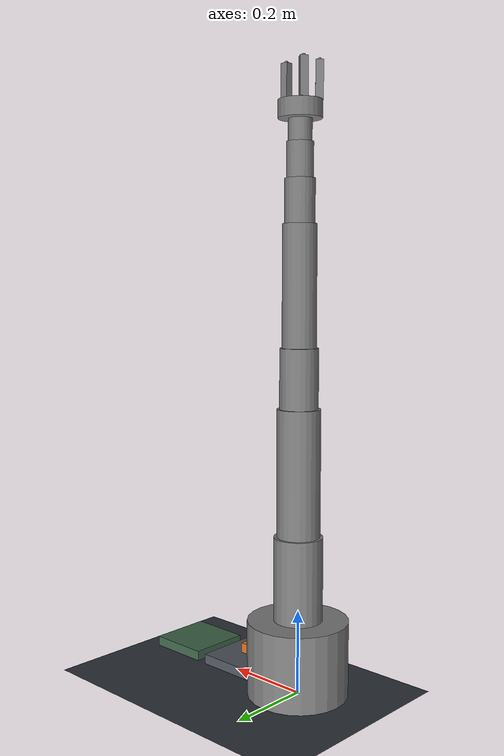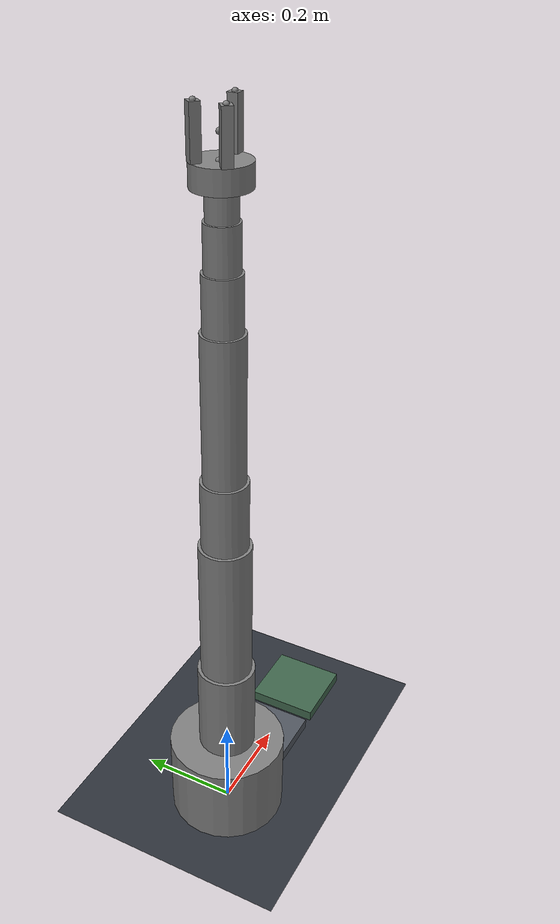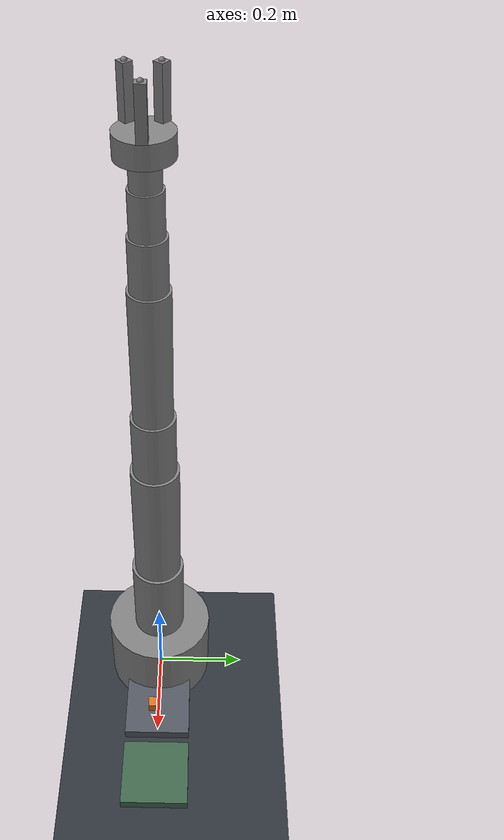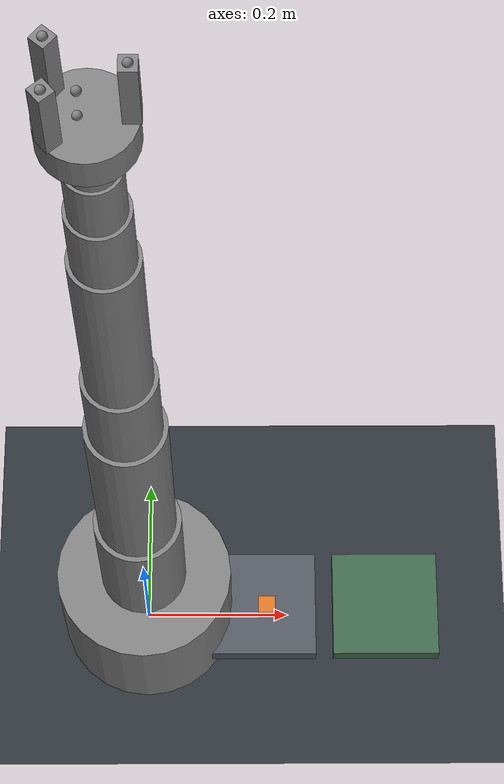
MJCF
<mujoco model="benchmark-world">
  <compiler angle="radian"/>

  <option tolerance="1e-10" integrator="implicitfast" jacobian="dense"/>

  <visual>
    <headlight ambient="0 0 0" diffuse="0 0 0" specular="0 0 0"/>
  </visual>

  <statistic extent="3" center="0 0 0"/>

  <default>
    <default class="robot/main"/>
  </default>

  <worldbody>
    <geom name="world/floor" size="3 3 0.1" type="plane" rgba="0.18 0.2 0.23 1"/>
    <camera name="world/camera" pos="1.8 -2.5 1.8" quat="0.803956 0.50933 0.164287 0.259321" fovy="50"/>
    <light name="world/key" pos="0 -1 3" dir="0 0 -1" type="directional" ambient="0.3 0.3 0.3" diffuse="0.8 0.8 0.8" specular="0.1 0.1 0.1"/>
    <body name="world/bench" pos="0.165 0 0.038">
      <geom name="world/bench_geom" size="0.075 0.075 0.012" type="box" condim="4" priority="1" friction="1 0.03 0.001" solref="0.004" solimp="0.95 0.99" rgba="0.32 0.34 0.38 1"/>
    </body>
    <body name="world/cube" pos="0.170478 -0.00920853 0.062">
      <joint name="world/cube_free" type="free"/>
      <geom name="world/cube_geom" size="0.012 0.012 0.012" type="box" condim="4" priority="1" friction="1.57543 0.03 0.001" solref="0.004" solimp="0.95 0.99" mass="0.014519" rgba="0.85 0.45 0.15 1"/>
    </body>
    <body name="world/destination" pos="0.34 0 0.038">
      <geom name="world/destination_geom" size="0.075 0.075 0.012" type="box" condim="4" priority="1" friction="1 0.03 0.001" solref="0.004" solimp="0.95 0.99" rgba="0.25 0.4 0.3 1"/>
    </body>
    <body name="robot/base">
      <inertial pos="0 0 0.09" quat="0.5 0.5 -0.5 0.5" mass="9" diaginertia="0.0648 0.0567 0.0567"/>
      <geom size="0.12 0.09" pos="0 0 0.09" type="cylinder"/>
      <site name="robot/robot_base" pos="0 0 0"/>
      <body name="robot/link_0" pos="0 0 0.18">
        <inertial pos="0 0 0.1" mass="1.9023" diaginertia="0.00794082 0.00794082 0.00319966"/>
        <joint name="robot/joint_0" pos="0 0 0" axis="0 0 1" range="-2.85 2.85" actuatorfrcrange="-170 170"/>
        <geom size="0.058 0.1" pos="0 0 0.1" type="cylinder"/>
        <body name="robot/link_1" pos="0 0 0.2">
          <inertial pos="0 0 0.15" mass="2.20971" diaginertia="0.0180119 0.0180119 0.00287824"/>
          <joint name="robot/joint_1" pos="0 0 0" axis="0 1 0" range="-2.85 2.85" actuatorfrcrange="-170 170"/>
          <geom size="0.05104 0.15" pos="0 0 0.15" type="cylinder"/>
          <body name="robot/link_2" pos="0 0 0.3">
            <inertial pos="0 0 0.07" mass="0.798559" diaginertia="0.00170706 0.00170706 0.0008055"/>
            <joint name="robot/joint_2" pos="0 0 0" axis="0 0 1" range="-2.85 2.85" actuatorfrcrange="-170 170"/>
            <geom size="0.044915 0.07" pos="0 0 0.07" type="cylinder"/>
            <body name="robot/link_3" pos="0 0 0.14">
              <inertial pos="0 0 0.14" mass="1.23681" diaginertia="0.00856353 0.00856353 0.00096611"/>
              <joint name="robot/joint_3" pos="0 0 0" axis="0 1 0" range="-2.85 2.85" actuatorfrcrange="-170 170"/>
              <geom size="0.039525 0.14" pos="0 0 0.14" type="cylinder"/>
              <body name="robot/link_4" pos="0 0 0.28">
                <inertial pos="0 0 0.05" mass="0.342066" diaginertia="0.00038851 0.00038851 0.00020692"/>
                <joint name="robot/joint_4" pos="0 0 0" axis="0 0 1" range="-2.85 2.85" actuatorfrcrange="-170 170"/>
                <geom size="0.034782 0.05" pos="0 0 0.05" type="cylinder"/>
                <body name="robot/link_5" pos="0 0 0.1">
                  <inertial pos="0 0 0.04" mass="0.25" diaginertia="0.00019189 0.00019189 0.00011711"/>
                  <joint name="robot/joint_5" pos="0 0 0" axis="0 1 0" range="-2.85 2.85" actuatorfrcrange="-170 170"/>
                  <geom size="0.030608 0.04" pos="0 0 0.04" type="cylinder"/>
                  <body name="robot/link_6" pos="0 0 0.08">
                    <inertial pos="0 0 0.025" mass="0.25" diaginertia="9.743e-05 9.743e-05 9.069e-05"/>
                    <joint name="robot/joint_6" pos="0 0 0" axis="0 0 1" range="-2.85 2.85" actuatorfrcrange="-170 170"/>
                    <geom size="0.026935 0.025" pos="0 0 0.025" type="cylinder"/>
                    <body name="robot/palm" pos="0 0 0.05">
                      <inertial pos="0 0 0.02" quat="0.5 0.5 -0.5 0.5" mass="0.4" diaginertia="0.0005 0.00030333 0.00030333"/>
                      <geom size="0.05 0.02" pos="0 0 0.02" type="cylinder"/>
                      <site name="robot/palm_grasp_point" pos="-0.00540243 -9.0523e-10 0.0809031"/>
                      <site name="robot/palm_grasp_center" pos="-0.00744933 0 0.04"/>
                      <site name="robot/palm_wrist" pos="0 0 0"/>
                      <body name="robot/digit_0" pos="0.042 0 0.04">
                        <inertial pos="0 0 0.0425" mass="0.05" diaginertia="3.145e-05 3.145e-05 2.7e-06"/>
                        <joint name="robot/digit_0_flex" pos="0 0 0" axis="0 -1 0" range="0 0.55" actuatorfrcrange="-18 18"/>
                        <geom size="0.009 0.009 0.0425" pos="0 0 0.0425" type="box"/>
                        <site name="robot/palm_tip" pos="0 0 0.085"/>
                        <site name="robot/palm_contact_0" pos="0 0 0.085"/>
                      </body>
                      <body name="robot/digit_1" pos="-0.032174 0.026997 0.04" quat="0.34202 0 0 0.939693">
                        <inertial pos="0 0 0.0425" mass="0.05" diaginertia="3.145e-05 3.145e-05 2.7e-06"/>
                        <joint name="robot/digit_1_flex" pos="0 0 0" axis="0 -1 0" range="0 0.55" actuatorfrcrange="-18 18"/>
                        <geom size="0.009 0.009 0.0425" pos="0 0 0.0425" type="box"/>
                        <site name="robot/palm_contact_1" pos="0 0 0.085"/>
                      </body>
                      <body name="robot/digit_2" pos="-0.032174 -0.026997 0.04" quat="-0.34202 0 0 0.939693">
                        <inertial pos="0 0 0.0425" mass="0.05" diaginertia="3.145e-05 3.145e-05 2.7e-06"/>
                        <joint name="robot/digit_2_flex" pos="0 0 0" axis="0 -1 0" range="0 0.55" actuatorfrcrange="-18 18"/>
                        <geom size="0.009 0.009 0.0425" pos="0 0 0.0425" type="box"/>
                        <site name="robot/palm_contact_2" pos="0 0 0.085"/>
                      </body>
                    </body>
                  </body>
                </body>
              </body>
            </body>
          </body>
        </body>
      </body>
    </body>
  </worldbody>

  <actuator>
    <general name="robot/joint_0_motor" joint="robot/joint_0" ctrllimited="true" ctrlrange="-170 170" forcelimited="true" forcerange="-170 170"/>
    <general name="robot/joint_1_motor" joint="robot/joint_1" ctrllimited="true" ctrlrange="-170 170" forcelimited="true" forcerange="-170 170"/>
    <general name="robot/joint_2_motor" joint="robot/joint_2" ctrllimited="true" ctrlrange="-170 170" forcelimited="true" forcerange="-170 170"/>
    <general name="robot/joint_3_motor" joint="robot/joint_3" ctrllimited="true" ctrlrange="-170 170" forcelimited="true" forcerange="-170 170"/>
    <general name="robot/joint_4_motor" joint="robot/joint_4" ctrllimited="true" ctrlrange="-170 170" forcelimited="true" forcerange="-170 170"/>
    <general name="robot/joint_5_motor" joint="robot/joint_5" ctrllimited="true" ctrlrange="-170 170" forcelimited="true" forcerange="-170 170"/>
    <general name="robot/joint_6_motor" joint="robot/joint_6" ctrllimited="true" ctrlrange="-170 170" forcelimited="true" forcerange="-170 170"/>
    <general name="robot/digit_0_flex_motor" joint="robot/digit_0_flex" ctrllimited="true" ctrlrange="-18 18" forcelimited="true" forcerange="-18 18"/>
    <general name="robot/digit_1_flex_motor" joint="robot/digit_1_flex" ctrllimited="true" ctrlrange="-18 18" forcelimited="true" forcerange="-18 18"/>
    <general name="robot/digit_2_flex_motor" joint="robot/digit_2_flex" ctrllimited="true" ctrlrange="-18 18" forcelimited="true" forcerange="-18 18"/>
  </actuator>
</mujoco>
